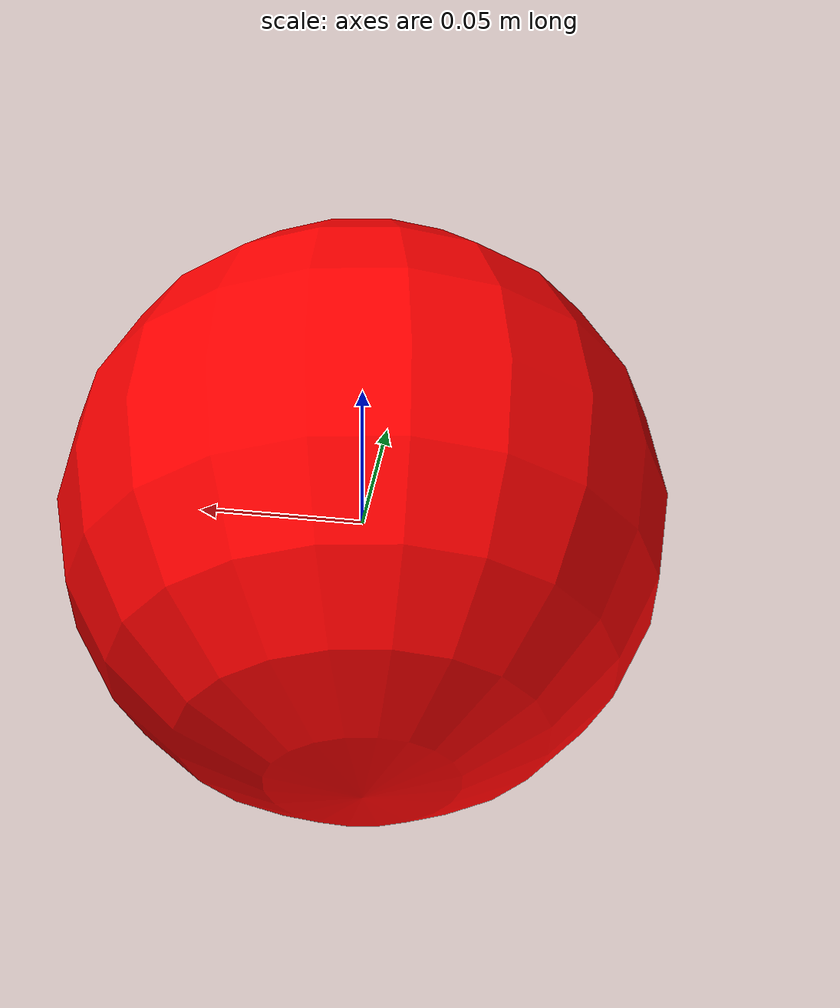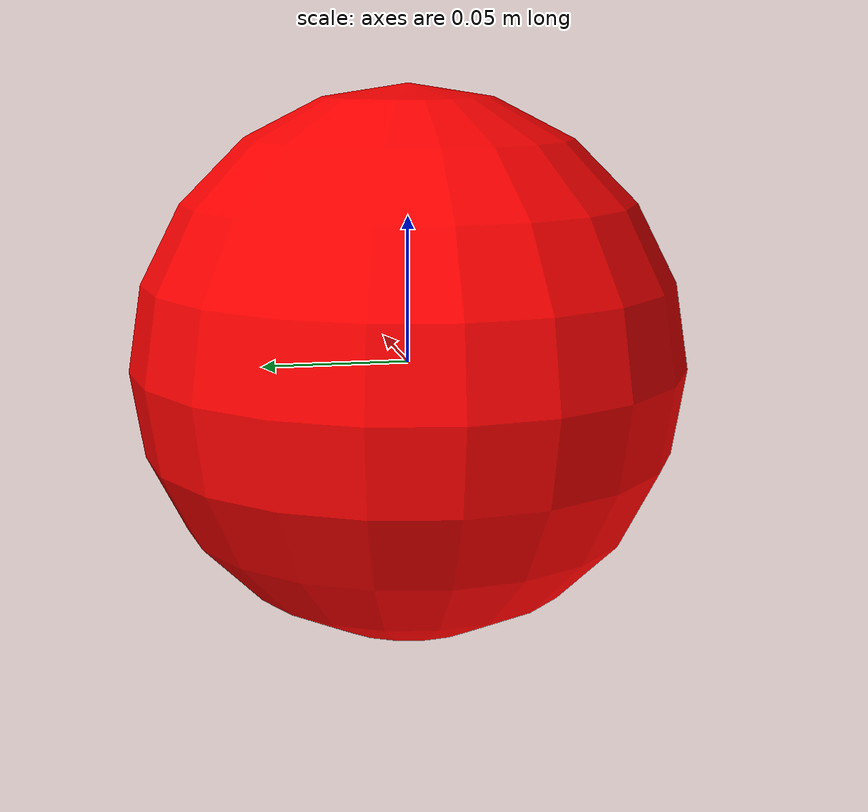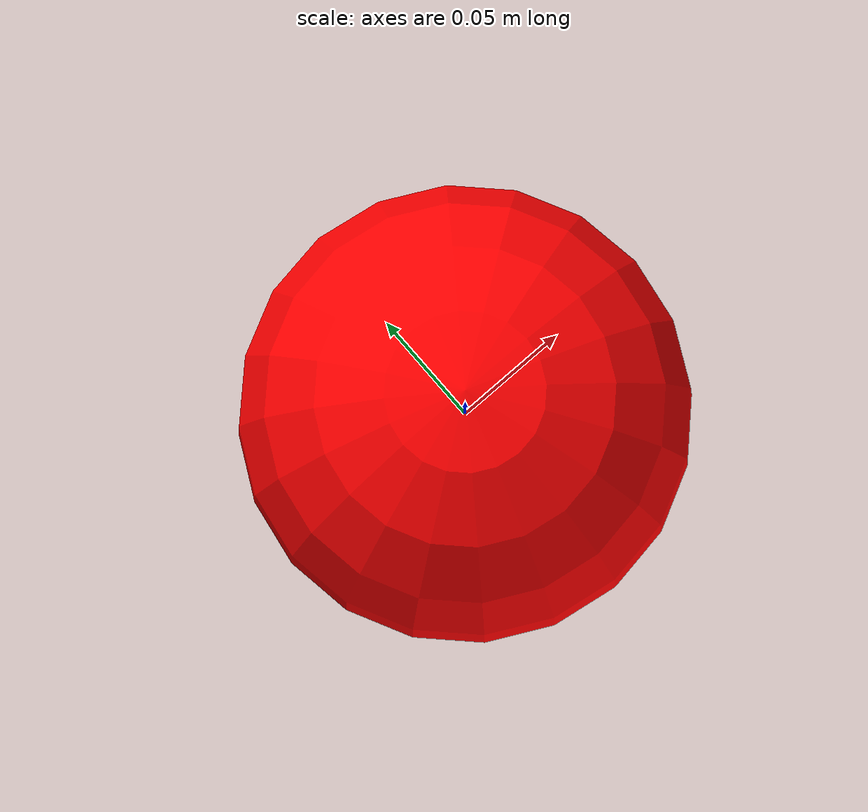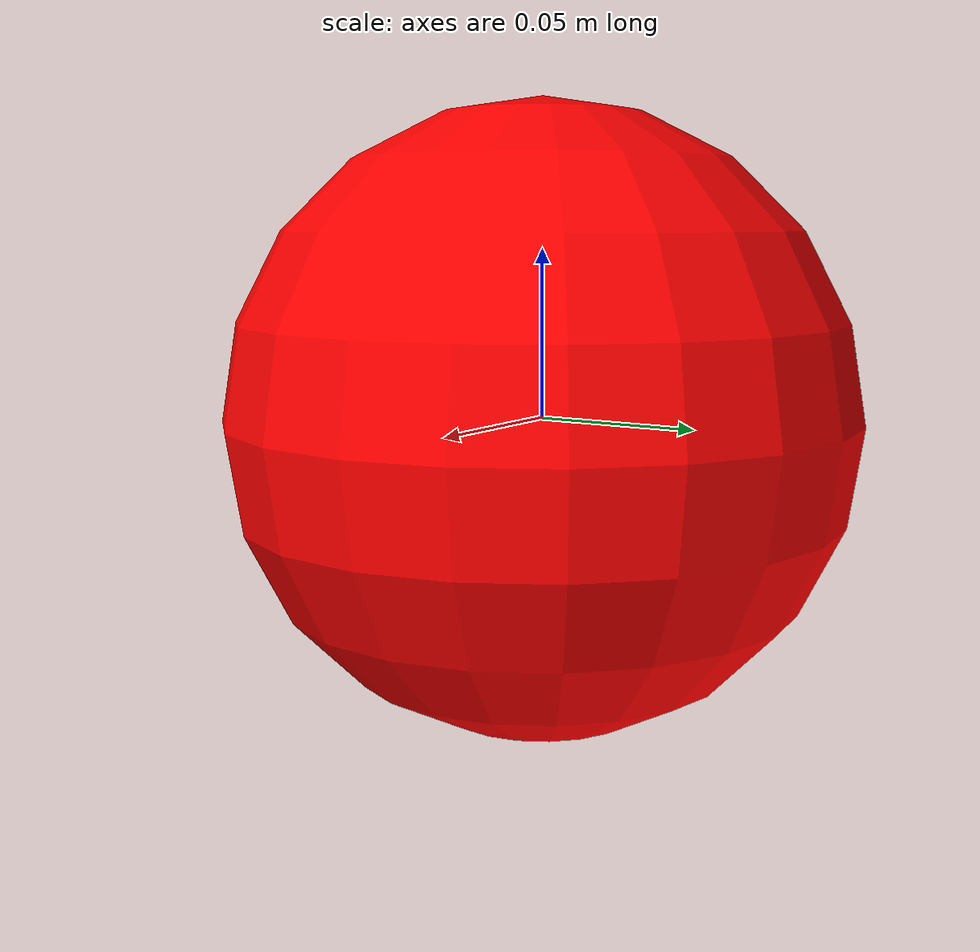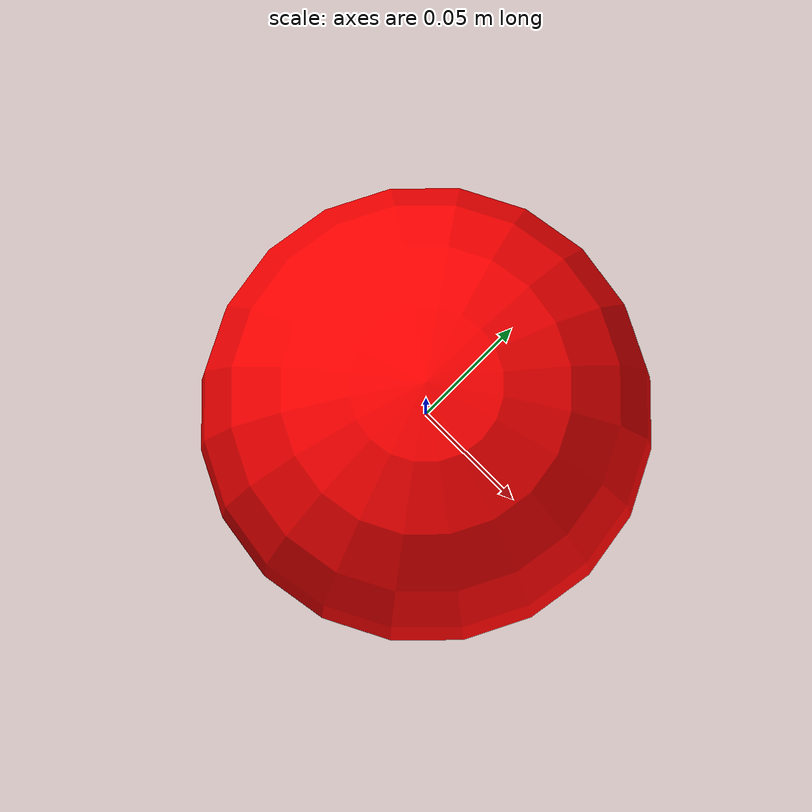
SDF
<?xml version='1.0'?>
<sdf version='1.6'>
  <model name='fruit'>
    <link name='link_1'>
      <pose frame=''>0 0 -0 0 -0 0</pose>
      <inertial>
        <mass>0.00669012</mass>
        <inertia>
          <ixx>2.375e-05</ixx>
          <ixy>0</ixy>
          <ixz>0</ixz>
          <iyy>2.375e-05</iyy>
          <iyz>0</iyz>
          <izz>2.375e-05</izz>
        </inertia>
        <pose frame=''>0 0 0 0 -0 0</pose>
      </inertial>
      <gravity>1</gravity>
      <self_collide>0</self_collide>
      <kinematic>0</kinematic>
      <visual name='visual'>
        <pose frame=''>0 0 0 0 -0 0</pose>
        <geometry>
          <sphere>
            <radius>0.0942124</radius>
          </sphere>
        </geometry>
        <material>
          <lighting>1</lighting>
          <script>
            <uri>file://media/materials/scripts/gazebo.material</uri>
            <name>Gazebo/Grey</name>
          </script>
          <ambient>1 0 0 1</ambient>
          <diffuse>1 0 0 1</diffuse>
          <specular>0.01 0.01 0.01 1</specular>
          <emissive>1 0 0 1</emissive>
          <shader type='vertex'>
            <normal_map>__default__</normal_map>
          </shader>
        </material>
        <cast_shadows>1</cast_shadows>
        <transparency>0</transparency>
      </visual>
      <collision name='collision'>
        <laser_retro>0</laser_retro>
        <max_contacts>10</max_contacts>
        <pose frame=''>0 0 0 0 -0 0</pose>
        <geometry>
          <sphere>
            <radius>0.094212</radius>
          </sphere>
        </geometry>
        <surface>
          <friction>
            <ode>
              <mu>1</mu>
              <mu2>1</mu2>
              <fdir1>0 0 0</fdir1>
              <slip1>0</slip1>
              <slip2>0</slip2>
            </ode>
            <torsional>
              <coefficient>1</coefficient>
              <patch_radius>0</patch_radius>
              <surface_radius>0</surface_radius>
              <use_patch_radius>1</use_patch_radius>
              <ode>
                <slip>0</slip>
              </ode>
            </torsional>
          </friction>
          <bounce>
            <restitution_coefficient>0</restitution_coefficient>
            <threshold>1e+06</threshold>
          </bounce>
          <contact>
            <collide_without_contact>0</collide_without_contact>
            <collide_without_contact_bitmask>1</collide_without_contact_bitmask>
            <collide_bitmask>1</collide_bitmask>
            <ode>
              <soft_cfm>0</soft_cfm>
              <soft_erp>0.2</soft_erp>
              <kp>1e+13</kp>
              <kd>1</kd>
              <max_vel>0.01</max_vel>
              <min_depth>0</min_depth>
            </ode>
            <bullet>
              <split_impulse>1</split_impulse>
              <split_impulse_penetration_threshold>-0.01</split_impulse_penetration_threshold>
              <soft_cfm>0</soft_cfm>
              <soft_erp>0.2</soft_erp>
              <kp>1e+13</kp>
              <kd>1</kd>
            </bullet>
          </contact>
        </surface>
      </collision>
    </link>
    <static>1</static>
    <allow_auto_disable>1</allow_auto_disable>
  </model>
</sdf>
